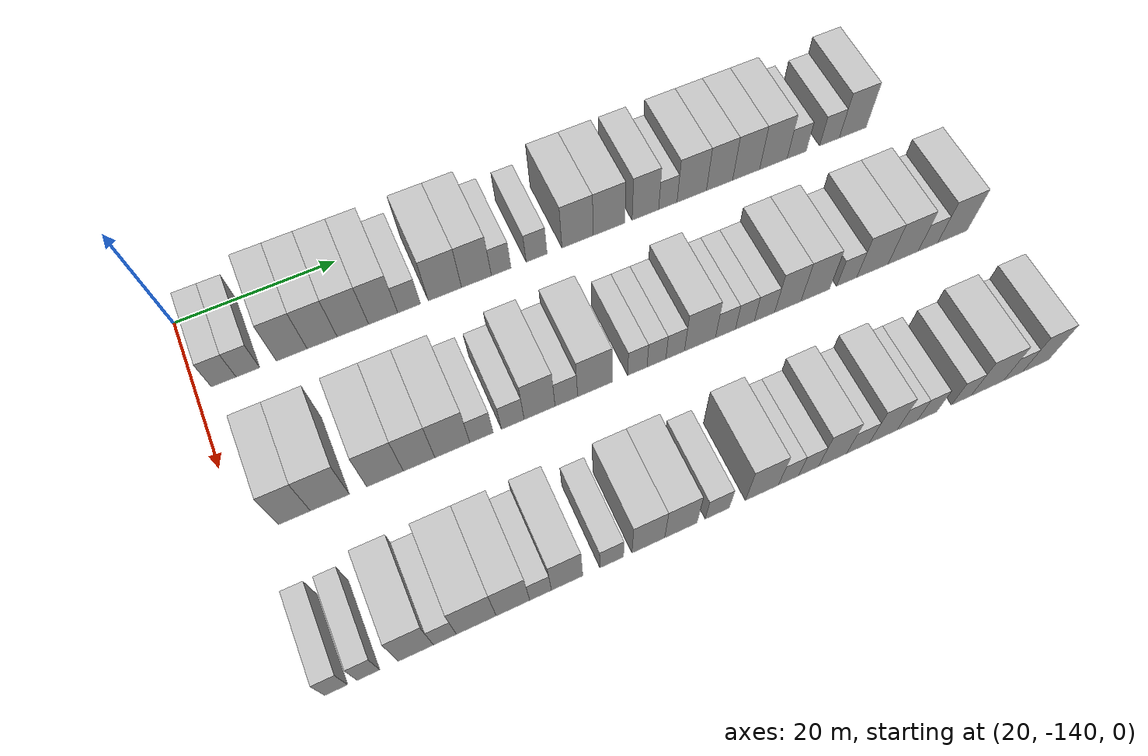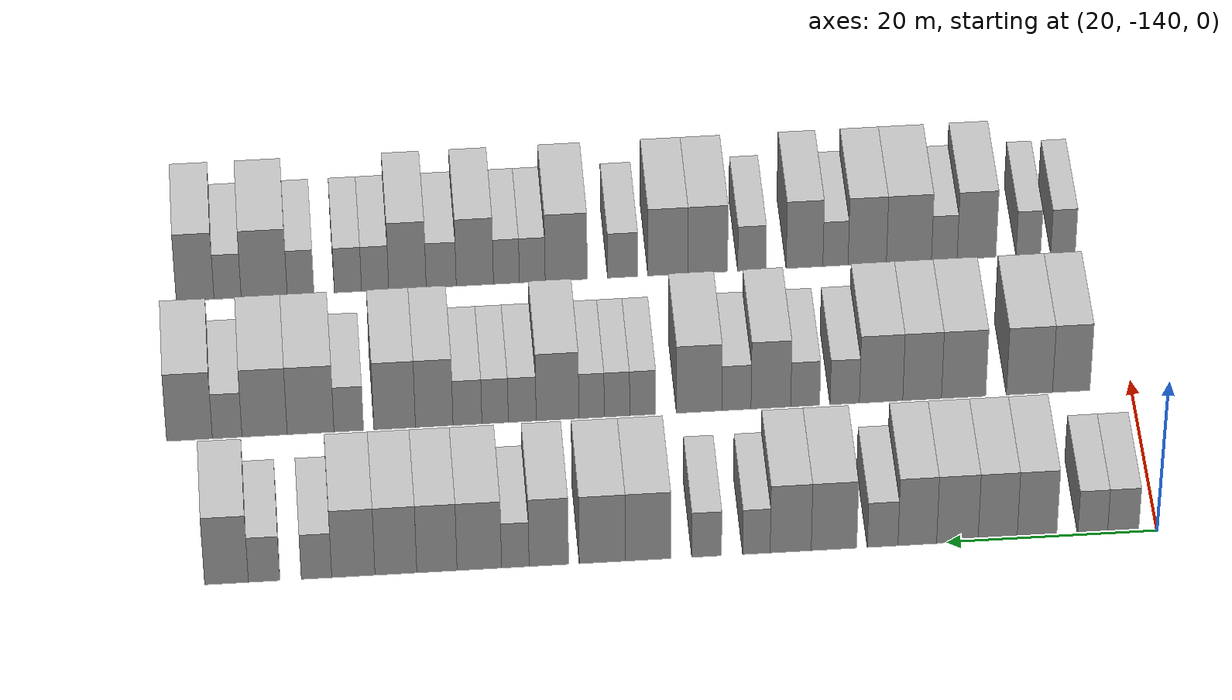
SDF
<sdf version="1.6">
 <world name="default">
  <model name="building_26">
   <static>1</static>
   <pose>25.0000 -136.6865 0 0.000000 0.000000 0.000000</pose>
   <link name="link">
    <pose>0 0 3.00 0 0 0</pose>
    <collision name="collision"><geometry><box><size>10.0000 2.9522 6.0000</size></box></geometry></collision>
    <visual name="visual">
     <cast_shadows>0</cast_shadows>
     <geometry><box><size>10.0000 2.9522 6.0000</size></box></geometry>
     <material>
      <script>
       <uri>model://HANNAS_wall/materials/scripts</uri>
       <uri>model://HANNAS_wall/materials/textures</uri>
       <name>vrc/HANNAS_wall</name>
      </script>
     </material>
    </visual>
   </link>
  </model>
  <model name="building_27">
   <static>1</static>
   <pose>25.0000 -133.7986 0 0.000000 0.000000 0.000000</pose>
   <link name="link">
    <pose>0 0 3.00 0 0 0</pose>
    <collision name="collision"><geometry><box><size>10.0000 2.8236 6.0000</size></box></geometry></collision>
    <visual name="visual">
     <cast_shadows>0</cast_shadows>
     <geometry><box><size>10.0000 2.8236 6.0000</size></box></geometry>
     <material>
      <script>
       <uri>model://HANNAS_wall/materials/scripts</uri>
       <uri>model://HANNAS_wall/materials/textures</uri>
       <name>vrc/HANNAS_wall</name>
      </script>
     </material>
    </visual>
   </link>
  </model>
  <model name="building_28">
   <static>1</static>
   <pose>25.0000 -128.5092 0 0.000000 0.000000 0.000000</pose>
   <link name="link">
    <pose>0 0 4.50 0 0 0</pose>
    <collision name="collision"><geometry><box><size>10.0000 3.7552 9.0000</size></box></geometry></collision>
    <visual name="visual">
     <cast_shadows>0</cast_shadows>
     <geometry><box><size>10.0000 3.7552 9.0000</size></box></geometry>
     <material>
      <script>
       <uri>model://HANNAS_wall/materials/scripts</uri>
       <uri>model://HANNAS_wall/materials/textures</uri>
       <name>vrc/HANNAS_wall</name>
      </script>
     </material>
    </visual>
   </link>
  </model>
  <model name="building_29">
   <static>1</static>
   <pose>25.0000 -124.7815 0 0.000000 0.000000 0.000000</pose>
   <link name="link">
    <pose>0 0 4.50 0 0 0</pose>
    <collision name="collision"><geometry><box><size>10.0000 3.7002 9.0000</size></box></geometry></collision>
    <visual name="visual">
     <cast_shadows>0</cast_shadows>
     <geometry><box><size>10.0000 3.7002 9.0000</size></box></geometry>
     <material>
      <script>
       <uri>model://HANNAS_wall/materials/scripts</uri>
       <uri>model://HANNAS_wall/materials/textures</uri>
       <name>vrc/HANNAS_wall</name>
      </script>
     </material>
    </visual>
   </link>
  </model>
  <model name="building_30">
   <static>1</static>
   <pose>25.0000 -120.9735 0 0.000000 0.000000 0.000000</pose>
   <link name="link">
    <pose>0 0 4.50 0 0 0</pose>
    <collision name="collision"><geometry><box><size>10.0000 3.9158 9.0000</size></box></geometry></collision>
    <visual name="visual">
     <cast_shadows>0</cast_shadows>
     <geometry><box><size>10.0000 3.9158 9.0000</size></box></geometry>
     <material>
      <script>
       <uri>model://HANNAS_wall/materials/scripts</uri>
       <uri>model://HANNAS_wall/materials/textures</uri>
       <name>vrc/HANNAS_wall</name>
      </script>
     </material>
    </visual>
   </link>
  </model>
  <model name="building_31">
   <static>1</static>
   <pose>25.0000 -117.1843 0 0.000000 0.000000 0.000000</pose>
   <link name="link">
    <pose>0 0 4.50 0 0 0</pose>
    <collision name="collision"><geometry><box><size>10.0000 3.6627 9.0000</size></box></geometry></collision>
    <visual name="visual">
     <cast_shadows>0</cast_shadows>
     <geometry><box><size>10.0000 3.6627 9.0000</size></box></geometry>
     <material>
      <script>
       <uri>model://HANNAS_wall/materials/scripts</uri>
       <uri>model://HANNAS_wall/materials/textures</uri>
       <name>vrc/HANNAS_wall</name>
      </script>
     </material>
    </visual>
   </link>
  </model>
  <model name="building_32">
   <static>1</static>
   <pose>25.0000 -113.9052 0 0.000000 0.000000 0.000000</pose>
   <link name="link">
    <pose>0 0 3.00 0 0 0</pose>
    <collision name="collision"><geometry><box><size>10.0000 2.8955 6.0000</size></box></geometry></collision>
    <visual name="visual">
     <cast_shadows>0</cast_shadows>
     <geometry><box><size>10.0000 2.8955 6.0000</size></box></geometry>
     <material>
      <script>
       <uri>model://HANNAS_wall/materials/scripts</uri>
       <uri>model://HANNAS_wall/materials/textures</uri>
       <name>vrc/HANNAS_wall</name>
      </script>
     </material>
    </visual>
   </link>
  </model>
  <model name="building_33">
   <static>1</static>
   <pose>25.0000 -109.3072 0 0.000000 0.000000 0.000000</pose>
   <link name="link">
    <pose>0 0 4.50 0 0 0</pose>
    <collision name="collision"><geometry><box><size>10.0000 4.3006 9.0000</size></box></geometry></collision>
    <visual name="visual">
     <cast_shadows>0</cast_shadows>
     <geometry><box><size>10.0000 4.3006 9.0000</size></box></geometry>
     <material>
      <script>
       <uri>model://HANNAS_wall/materials/scripts</uri>
       <uri>model://HANNAS_wall/materials/textures</uri>
       <name>vrc/HANNAS_wall</name>
      </script>
     </material>
    </visual>
   </link>
  </model>
  <model name="building_34">
   <static>1</static>
   <pose>25.0000 -105.2153 0 0.000000 0.000000 0.000000</pose>
   <link name="link">
    <pose>0 0 4.50 0 0 0</pose>
    <collision name="collision"><geometry><box><size>10.0000 3.8832 9.0000</size></box></geometry></collision>
    <visual name="visual">
     <cast_shadows>0</cast_shadows>
     <geometry><box><size>10.0000 3.8832 9.0000</size></box></geometry>
     <material>
      <script>
       <uri>model://HANNAS_wall/materials/scripts</uri>
       <uri>model://HANNAS_wall/materials/textures</uri>
       <name>vrc/HANNAS_wall</name>
      </script>
     </material>
    </visual>
   </link>
  </model>
  <model name="building_35">
   <static>1</static>
   <pose>25.0000 -101.9781 0 0.000000 0.000000 0.000000</pose>
   <link name="link">
    <pose>0 0 3.00 0 0 0</pose>
    <collision name="collision"><geometry><box><size>10.0000 2.5912 6.0000</size></box></geometry></collision>
    <visual name="visual">
     <cast_shadows>0</cast_shadows>
     <geometry><box><size>10.0000 2.5912 6.0000</size></box></geometry>
     <material>
      <script>
       <uri>model://HANNAS_wall/materials/scripts</uri>
       <uri>model://HANNAS_wall/materials/textures</uri>
       <name>vrc/HANNAS_wall</name>
      </script>
     </material>
    </visual>
   </link>
  </model>
  <model name="building_36">
   <static>1</static>
   <pose>25.0000 -97.2836 0 0.000000 0.000000 0.000000</pose>
   <link name="link">
    <pose>0 0 3.00 0 0 0</pose>
    <collision name="collision"><geometry><box><size>10.0000 2.7979 6.0000</size></box></geometry></collision>
    <visual name="visual">
     <cast_shadows>0</cast_shadows>
     <geometry><box><size>10.0000 2.7979 6.0000</size></box></geometry>
     <material>
      <script>
       <uri>model://HANNAS_wall/materials/scripts</uri>
       <uri>model://HANNAS_wall/materials/textures</uri>
       <name>vrc/HANNAS_wall</name>
      </script>
     </material>
    </visual>
   </link>
  </model>
  <model name="building_37">
   <static>1</static>
   <pose>25.0000 -91.7551 0 0.000000 0.000000 0.000000</pose>
   <link name="link">
    <pose>0 0 4.50 0 0 0</pose>
    <collision name="collision"><geometry><box><size>10.0000 4.2590 9.0000</size></box></geometry></collision>
    <visual name="visual">
     <cast_shadows>0</cast_shadows>
     <geometry><box><size>10.0000 4.2590 9.0000</size></box></geometry>
     <material>
      <script>
       <uri>model://HANNAS_wall/materials/scripts</uri>
       <uri>model://HANNAS_wall/materials/textures</uri>
       <name>vrc/HANNAS_wall</name>
      </script>
     </material>
    </visual>
   </link>
  </model>
  <model name="building_38">
   <static>1</static>
   <pose>25.0000 -87.4545 0 0.000000 0.000000 0.000000</pose>
   <link name="link">
    <pose>0 0 4.50 0 0 0</pose>
    <collision name="collision"><geometry><box><size>10.0000 4.3421 9.0000</size></box></geometry></collision>
    <visual name="visual">
     <cast_shadows>0</cast_shadows>
     <geometry><box><size>10.0000 4.3421 9.0000</size></box></geometry>
     <material>
      <script>
       <uri>model://HANNAS_wall/materials/scripts</uri>
       <uri>model://HANNAS_wall/materials/textures</uri>
       <name>vrc/HANNAS_wall</name>
      </script>
     </material>
    </visual>
   </link>
  </model>
  <model name="building_39">
   <static>1</static>
   <pose>25.0000 -82.4269 0 0.000000 0.000000 0.000000</pose>
   <link name="link">
    <pose>0 0 4.50 0 0 0</pose>
    <collision name="collision"><geometry><box><size>10.0000 3.7131 9.0000</size></box></geometry></collision>
    <visual name="visual">
     <cast_shadows>0</cast_shadows>
     <geometry><box><size>10.0000 3.7131 9.0000</size></box></geometry>
     <material>
      <script>
       <uri>model://HANNAS_wall/materials/scripts</uri>
       <uri>model://HANNAS_wall/materials/textures</uri>
       <name>vrc/HANNAS_wall</name>
      </script>
     </material>
    </visual>
   </link>
  </model>
  <model name="building_40">
   <static>1</static>
   <pose>25.0000 -79.2760 0 0.000000 0.000000 0.000000</pose>
   <link name="link">
    <pose>0 0 3.00 0 0 0</pose>
    <collision name="collision"><geometry><box><size>10.0000 2.5886 6.0000</size></box></geometry></collision>
    <visual name="visual">
     <cast_shadows>0</cast_shadows>
     <geometry><box><size>10.0000 2.5886 6.0000</size></box></geometry>
     <material>
      <script>
       <uri>model://HANNAS_wall/materials/scripts</uri>
       <uri>model://HANNAS_wall/materials/textures</uri>
       <name>vrc/HANNAS_wall</name>
      </script>
     </material>
    </visual>
   </link>
  </model>
  <model name="building_41">
   <static>1</static>
   <pose>25.0000 -75.8883 0 0.000000 0.000000 0.000000</pose>
   <link name="link">
    <pose>0 0 4.50 0 0 0</pose>
    <collision name="collision"><geometry><box><size>10.0000 4.1868 9.0000</size></box></geometry></collision>
    <visual name="visual">
     <cast_shadows>0</cast_shadows>
     <geometry><box><size>10.0000 4.1868 9.0000</size></box></geometry>
     <material>
      <script>
       <uri>model://HANNAS_wall/materials/scripts</uri>
       <uri>model://HANNAS_wall/materials/textures</uri>
       <name>vrc/HANNAS_wall</name>
      </script>
     </material>
    </visual>
   </link>
  </model>
  <model name="building_42">
   <static>1</static>
   <pose>25.0000 -71.9064 0 0.000000 0.000000 0.000000</pose>
   <link name="link">
    <pose>0 0 4.50 0 0 0</pose>
    <collision name="collision"><geometry><box><size>10.0000 3.7771 9.0000</size></box></geometry></collision>
    <visual name="visual">
     <cast_shadows>0</cast_shadows>
     <geometry><box><size>10.0000 3.7771 9.0000</size></box></geometry>
     <material>
      <script>
       <uri>model://HANNAS_wall/materials/scripts</uri>
       <uri>model://HANNAS_wall/materials/textures</uri>
       <name>vrc/HANNAS_wall</name>
      </script>
     </material>
    </visual>
   </link>
  </model>
  <model name="building_43">
   <static>1</static>
   <pose>25.0000 -68.0568 0 0.000000 0.000000 0.000000</pose>
   <link name="link">
    <pose>0 0 4.50 0 0 0</pose>
    <collision name="collision"><geometry><box><size>10.0000 3.9220 9.0000</size></box></geometry></collision>
    <visual name="visual">
     <cast_shadows>0</cast_shadows>
     <geometry><box><size>10.0000 3.9220 9.0000</size></box></geometry>
     <material>
      <script>
       <uri>model://HANNAS_wall/materials/scripts</uri>
       <uri>model://HANNAS_wall/materials/textures</uri>
       <name>vrc/HANNAS_wall</name>
      </script>
     </material>
    </visual>
   </link>
  </model>
  <model name="building_44">
   <static>1</static>
   <pose>25.0000 -64.0675 0 0.000000 0.000000 0.000000</pose>
   <link name="link">
    <pose>0 0 4.50 0 0 0</pose>
    <collision name="collision"><geometry><box><size>10.0000 4.0567 9.0000</size></box></geometry></collision>
    <visual name="visual">
     <cast_shadows>0</cast_shadows>
     <geometry><box><size>10.0000 4.0567 9.0000</size></box></geometry>
     <material>
      <script>
       <uri>model://HANNAS_wall/materials/scripts</uri>
       <uri>model://HANNAS_wall/materials/textures</uri>
       <name>vrc/HANNAS_wall</name>
      </script>
     </material>
    </visual>
   </link>
  </model>
  <model name="building_45">
   <static>1</static>
   <pose>25.0000 -60.6158 0 0.000000 0.000000 0.000000</pose>
   <link name="link">
    <pose>0 0 3.00 0 0 0</pose>
    <collision name="collision"><geometry><box><size>10.0000 2.8466 6.0000</size></box></geometry></collision>
    <visual name="visual">
     <cast_shadows>0</cast_shadows>
     <geometry><box><size>10.0000 2.8466 6.0000</size></box></geometry>
     <material>
      <script>
       <uri>model://HANNAS_wall/materials/scripts</uri>
       <uri>model://HANNAS_wall/materials/textures</uri>
       <name>vrc/HANNAS_wall</name>
      </script>
     </material>
    </visual>
   </link>
  </model>
  <model name="building_46">
   <static>1</static>
   <pose>25.0000 -55.7144 0 0.000000 0.000000 0.000000</pose>
   <link name="link">
    <pose>0 0 3.00 0 0 0</pose>
    <collision name="collision"><geometry><box><size>10.0000 2.9563 6.0000</size></box></geometry></collision>
    <visual name="visual">
     <cast_shadows>0</cast_shadows>
     <geometry><box><size>10.0000 2.9563 6.0000</size></box></geometry>
     <material>
      <script>
       <uri>model://HANNAS_wall/materials/scripts</uri>
       <uri>model://HANNAS_wall/materials/textures</uri>
       <name>vrc/HANNAS_wall</name>
      </script>
     </material>
    </visual>
   </link>
  </model>
  <model name="building_47">
   <static>1</static>
   <pose>25.0000 -52.1917 0 0.000000 0.000000 0.000000</pose>
   <link name="link">
    <pose>0 0 4.50 0 0 0</pose>
    <collision name="collision"><geometry><box><size>10.0000 4.0892 9.0000</size></box></geometry></collision>
    <visual name="visual">
     <cast_shadows>0</cast_shadows>
     <geometry><box><size>10.0000 4.0892 9.0000</size></box></geometry>
     <material>
      <script>
       <uri>model://HANNAS_wall/materials/scripts</uri>
       <uri>model://HANNAS_wall/materials/textures</uri>
       <name>vrc/HANNAS_wall</name>
      </script>
     </material>
    </visual>
   </link>
  </model>
  <model name="building_137">
   <static>1</static>
   <pose>44.0000 -134.0973 0 0.000000 0.000000 0.000000</pose>
   <link name="link">
    <pose>0 0 4.50 0 0 0</pose>
    <collision name="collision"><geometry><box><size>10.0000 3.6330 9.0000</size></box></geometry></collision>
    <visual name="visual">
     <cast_shadows>0</cast_shadows>
     <geometry><box><size>10.0000 3.6330 9.0000</size></box></geometry>
     <material>
      <script>
       <uri>model://HANNAS_wall/materials/scripts</uri>
       <uri>model://HANNAS_wall/materials/textures</uri>
       <name>vrc/HANNAS_wall</name>
      </script>
     </material>
    </visual>
   </link>
  </model>
  <model name="building_138">
   <static>1</static>
   <pose>44.0000 -130.0490 0 0.000000 0.000000 0.000000</pose>
   <link name="link">
    <pose>0 0 4.50 0 0 0</pose>
    <collision name="collision"><geometry><box><size>10.0000 4.4636 9.0000</size></box></geometry></collision>
    <visual name="visual">
     <cast_shadows>0</cast_shadows>
     <geometry><box><size>10.0000 4.4636 9.0000</size></box></geometry>
     <material>
      <script>
       <uri>model://HANNAS_wall/materials/scripts</uri>
       <uri>model://HANNAS_wall/materials/textures</uri>
       <name>vrc/HANNAS_wall</name>
      </script>
     </material>
    </visual>
   </link>
  </model>
  <model name="building_139">
   <static>1</static>
   <pose>44.0000 -123.6754 0 0.000000 0.000000 0.000000</pose>
   <link name="link">
    <pose>0 0 4.50 0 0 0</pose>
    <collision name="collision"><geometry><box><size>10.0000 4.2837 9.0000</size></box></geometry></collision>
    <visual name="visual">
     <cast_shadows>0</cast_shadows>
     <geometry><box><size>10.0000 4.2837 9.0000</size></box></geometry>
     <material>
      <script>
       <uri>model://HANNAS_wall/materials/scripts</uri>
       <uri>model://HANNAS_wall/materials/textures</uri>
       <name>vrc/HANNAS_wall</name>
      </script>
     </material>
    </visual>
   </link>
  </model>
  <model name="building_140">
   <static>1</static>
   <pose>44.0000 -119.6615 0 0.000000 0.000000 0.000000</pose>
   <link name="link">
    <pose>0 0 4.50 0 0 0</pose>
    <collision name="collision"><geometry><box><size>10.0000 3.7443 9.0000</size></box></geometry></collision>
    <visual name="visual">
     <cast_shadows>0</cast_shadows>
     <geometry><box><size>10.0000 3.7443 9.0000</size></box></geometry>
     <material>
      <script>
       <uri>model://HANNAS_wall/materials/scripts</uri>
       <uri>model://HANNAS_wall/materials/textures</uri>
       <name>vrc/HANNAS_wall</name>
      </script>
     </material>
    </visual>
   </link>
  </model>
  <model name="building_141">
   <static>1</static>
   <pose>44.0000 -115.6924 0 0.000000 0.000000 0.000000</pose>
   <link name="link">
    <pose>0 0 4.50 0 0 0</pose>
    <collision name="collision"><geometry><box><size>10.0000 4.1938 9.0000</size></box></geometry></collision>
    <visual name="visual">
     <cast_shadows>0</cast_shadows>
     <geometry><box><size>10.0000 4.1938 9.0000</size></box></geometry>
     <material>
      <script>
       <uri>model://HANNAS_wall/materials/scripts</uri>
       <uri>model://HANNAS_wall/materials/textures</uri>
       <name>vrc/HANNAS_wall</name>
      </script>
     </material>
    </visual>
   </link>
  </model>
  <model name="building_142">
   <static>1</static>
   <pose>44.0000 -112.1790 0 0.000000 0.000000 0.000000</pose>
   <link name="link">
    <pose>0 0 3.00 0 0 0</pose>
    <collision name="collision"><geometry><box><size>10.0000 2.8330 6.0000</size></box></geometry></collision>
    <visual name="visual">
     <cast_shadows>0</cast_shadows>
     <geometry><box><size>10.0000 2.8330 6.0000</size></box></geometry>
     <material>
      <script>
       <uri>model://HANNAS_wall/materials/scripts</uri>
       <uri>model://HANNAS_wall/materials/textures</uri>
       <name>vrc/HANNAS_wall</name>
      </script>
     </material>
    </visual>
   </link>
  </model>
  <model name="building_143">
   <static>1</static>
   <pose>44.0000 -108.3633 0 0.000000 0.000000 0.000000</pose>
   <link name="link">
    <pose>0 0 3.00 0 0 0</pose>
    <collision name="collision"><geometry><box><size>10.0000 2.7986 6.0000</size></box></geometry></collision>
    <visual name="visual">
     <cast_shadows>0</cast_shadows>
     <geometry><box><size>10.0000 2.7986 6.0000</size></box></geometry>
     <material>
      <script>
       <uri>model://HANNAS_wall/materials/scripts</uri>
       <uri>model://HANNAS_wall/materials/textures</uri>
       <name>vrc/HANNAS_wall</name>
      </script>
     </material>
    </visual>
   </link>
  </model>
  <model name="building_144">
   <static>1</static>
   <pose>44.0000 -105.0489 0 0.000000 0.000000 0.000000</pose>
   <link name="link">
    <pose>0 0 4.50 0 0 0</pose>
    <collision name="collision"><geometry><box><size>10.0000 3.8302 9.0000</size></box></geometry></collision>
    <visual name="visual">
     <cast_shadows>0</cast_shadows>
     <geometry><box><size>10.0000 3.8302 9.0000</size></box></geometry>
     <material>
      <script>
       <uri>model://HANNAS_wall/materials/scripts</uri>
       <uri>model://HANNAS_wall/materials/textures</uri>
       <name>vrc/HANNAS_wall</name>
      </script>
     </material>
    </visual>
   </link>
  </model>
  <model name="building_145">
   <static>1</static>
   <pose>44.0000 -101.7205 0 0.000000 0.000000 0.000000</pose>
   <link name="link">
    <pose>0 0 3.00 0 0 0</pose>
    <collision name="collision"><geometry><box><size>10.0000 2.8266 6.0000</size></box></geometry></collision>
    <visual name="visual">
     <cast_shadows>0</cast_shadows>
     <geometry><box><size>10.0000 2.8266 6.0000</size></box></geometry>
     <material>
      <script>
       <uri>model://HANNAS_wall/materials/scripts</uri>
       <uri>model://HANNAS_wall/materials/textures</uri>
       <name>vrc/HANNAS_wall</name>
      </script>
     </material>
    </visual>
   </link>
  </model>
  <model name="building_146">
   <static>1</static>
   <pose>44.0000 -98.1257 0 0.000000 0.000000 0.000000</pose>
   <link name="link">
    <pose>0 0 4.50 0 0 0</pose>
    <collision name="collision"><geometry><box><size>10.0000 4.3629 9.0000</size></box></geometry></collision>
    <visual name="visual">
     <cast_shadows>0</cast_shadows>
     <geometry><box><size>10.0000 4.3629 9.0000</size></box></geometry>
     <material>
      <script>
       <uri>model://HANNAS_wall/materials/scripts</uri>
       <uri>model://HANNAS_wall/materials/textures</uri>
       <name>vrc/HANNAS_wall</name>
      </script>
     </material>
    </visual>
   </link>
  </model>
  <model name="building_147">
   <static>1</static>
   <pose>44.0000 -92.6922 0 0.000000 0.000000 0.000000</pose>
   <link name="link">
    <pose>0 0 3.00 0 0 0</pose>
    <collision name="collision"><geometry><box><size>10.0000 2.5041 6.0000</size></box></geometry></collision>
    <visual name="visual">
     <cast_shadows>0</cast_shadows>
     <geometry><box><size>10.0000 2.5041 6.0000</size></box></geometry>
     <material>
      <script>
       <uri>model://HANNAS_wall/materials/scripts</uri>
       <uri>model://HANNAS_wall/materials/textures</uri>
       <name>vrc/HANNAS_wall</name>
      </script>
     </material>
    </visual>
   </link>
  </model>
  <model name="building_148">
   <static>1</static>
   <pose>44.0000 -90.2165 0 0.000000 0.000000 0.000000</pose>
   <link name="link">
    <pose>0 0 3.00 0 0 0</pose>
    <collision name="collision"><geometry><box><size>10.0000 2.4473 6.0000</size></box></geometry></collision>
    <visual name="visual">
     <cast_shadows>0</cast_shadows>
     <geometry><box><size>10.0000 2.4473 6.0000</size></box></geometry>
     <material>
      <script>
       <uri>model://HANNAS_wall/materials/scripts</uri>
       <uri>model://HANNAS_wall/materials/textures</uri>
       <name>vrc/HANNAS_wall</name>
      </script>
     </material>
    </visual>
   </link>
  </model>
  <model name="building_149">
   <static>1</static>
   <pose>44.0000 -87.7752 0 0.000000 0.000000 0.000000</pose>
   <link name="link">
    <pose>0 0 3.00 0 0 0</pose>
    <collision name="collision"><geometry><box><size>10.0000 2.4353 6.0000</size></box></geometry></collision>
    <visual name="visual">
     <cast_shadows>0</cast_shadows>
     <geometry><box><size>10.0000 2.4353 6.0000</size></box></geometry>
     <material>
      <script>
       <uri>model://HANNAS_wall/materials/scripts</uri>
       <uri>model://HANNAS_wall/materials/textures</uri>
       <name>vrc/HANNAS_wall</name>
      </script>
     </material>
    </visual>
   </link>
  </model>
  <model name="building_150">
   <static>1</static>
   <pose>44.0000 -84.5060 0 0.000000 0.000000 0.000000</pose>
   <link name="link">
    <pose>0 0 4.50 0 0 0</pose>
    <collision name="collision"><geometry><box><size>10.0000 4.1030 9.0000</size></box></geometry></collision>
    <visual name="visual">
     <cast_shadows>0</cast_shadows>
     <geometry><box><size>10.0000 4.1030 9.0000</size></box></geometry>
     <material>
      <script>
       <uri>model://HANNAS_wall/materials/scripts</uri>
       <uri>model://HANNAS_wall/materials/textures</uri>
       <name>vrc/HANNAS_wall</name>
      </script>
     </material>
    </visual>
   </link>
  </model>
  <model name="building_151">
   <static>1</static>
   <pose>44.0000 -81.1159 0 0.000000 0.000000 0.000000</pose>
   <link name="link">
    <pose>0 0 3.00 0 0 0</pose>
    <collision name="collision"><geometry><box><size>10.0000 2.6771 6.0000</size></box></geometry></collision>
    <visual name="visual">
     <cast_shadows>0</cast_shadows>
     <geometry><box><size>10.0000 2.6771 6.0000</size></box></geometry>
     <material>
      <script>
       <uri>model://HANNAS_wall/materials/scripts</uri>
       <uri>model://HANNAS_wall/materials/textures</uri>
       <name>vrc/HANNAS_wall</name>
      </script>
     </material>
    </visual>
   </link>
  </model>
  <model name="building_152">
   <static>1</static>
   <pose>44.0000 -78.5086 0 0.000000 0.000000 0.000000</pose>
   <link name="link">
    <pose>0 0 3.00 0 0 0</pose>
    <collision name="collision"><geometry><box><size>10.0000 2.5376 6.0000</size></box></geometry></collision>
    <visual name="visual">
     <cast_shadows>0</cast_shadows>
     <geometry><box><size>10.0000 2.5376 6.0000</size></box></geometry>
     <material>
      <script>
       <uri>model://HANNAS_wall/materials/scripts</uri>
       <uri>model://HANNAS_wall/materials/textures</uri>
       <name>vrc/HANNAS_wall</name>
      </script>
     </material>
    </visual>
   </link>
  </model>
  <model name="building_153">
   <static>1</static>
   <pose>44.0000 -75.8538 0 0.000000 0.000000 0.000000</pose>
   <link name="link">
    <pose>0 0 3.00 0 0 0</pose>
    <collision name="collision"><geometry><box><size>10.0000 2.7719 6.0000</size></box></geometry></collision>
    <visual name="visual">
     <cast_shadows>0</cast_shadows>
     <geometry><box><size>10.0000 2.7719 6.0000</size></box></geometry>
     <material>
      <script>
       <uri>model://HANNAS_wall/materials/scripts</uri>
       <uri>model://HANNAS_wall/materials/textures</uri>
       <name>vrc/HANNAS_wall</name>
      </script>
     </material>
    </visual>
   </link>
  </model>
  <model name="building_154">
   <static>1</static>
   <pose>44.0000 -72.6641 0 0.000000 0.000000 0.000000</pose>
   <link name="link">
    <pose>0 0 4.50 0 0 0</pose>
    <collision name="collision"><geometry><box><size>10.0000 3.6076 9.0000</size></box></geometry></collision>
    <visual name="visual">
     <cast_shadows>0</cast_shadows>
     <geometry><box><size>10.0000 3.6076 9.0000</size></box></geometry>
     <material>
      <script>
       <uri>model://HANNAS_wall/materials/scripts</uri>
       <uri>model://HANNAS_wall/materials/textures</uri>
       <name>vrc/HANNAS_wall</name>
      </script>
     </material>
    </visual>
   </link>
  </model>
  <model name="building_155">
   <static>1</static>
   <pose>44.0000 -68.8709 0 0.000000 0.000000 0.000000</pose>
   <link name="link">
    <pose>0 0 4.50 0 0 0</pose>
    <collision name="collision"><geometry><box><size>10.0000 3.9789 9.0000</size></box></geometry></collision>
    <visual name="visual">
     <cast_shadows>0</cast_shadows>
     <geometry><box><size>10.0000 3.9789 9.0000</size></box></geometry>
     <material>
      <script>
       <uri>model://HANNAS_wall/materials/scripts</uri>
       <uri>model://HANNAS_wall/materials/textures</uri>
       <name>vrc/HANNAS_wall</name>
      </script>
     </material>
    </visual>
   </link>
  </model>
  <model name="building_156">
   <static>1</static>
   <pose>44.0000 -64.4676 0 0.000000 0.000000 0.000000</pose>
   <link name="link">
    <pose>0 0 3.00 0 0 0</pose>
    <collision name="collision"><geometry><box><size>10.0000 2.8277 6.0000</size></box></geometry></collision>
    <visual name="visual">
     <cast_shadows>0</cast_shadows>
     <geometry><box><size>10.0000 2.8277 6.0000</size></box></geometry>
     <material>
      <script>
       <uri>model://HANNAS_wall/materials/scripts</uri>
       <uri>model://HANNAS_wall/materials/textures</uri>
       <name>vrc/HANNAS_wall</name>
      </script>
     </material>
    </visual>
   </link>
  </model>
  <model name="building_157">
   <static>1</static>
   <pose>44.0000 -60.8131 0 0.000000 0.000000 0.000000</pose>
   <link name="link">
    <pose>0 0 4.50 0 0 0</pose>
    <collision name="collision"><geometry><box><size>10.0000 4.4812 9.0000</size></box></geometry></collision>
    <visual name="visual">
     <cast_shadows>0</cast_shadows>
     <geometry><box><size>10.0000 4.4812 9.0000</size></box></geometry>
     <material>
      <script>
       <uri>model://HANNAS_wall/materials/scripts</uri>
       <uri>model://HANNAS_wall/materials/textures</uri>
       <name>vrc/HANNAS_wall</name>
      </script>
     </material>
    </visual>
   </link>
  </model>
  <model name="building_158">
   <static>1</static>
   <pose>44.0000 -56.4097 0 0.000000 0.000000 0.000000</pose>
   <link name="link">
    <pose>0 0 4.50 0 0 0</pose>
    <collision name="collision"><geometry><box><size>10.0000 4.3256 9.0000</size></box></geometry></collision>
    <visual name="visual">
     <cast_shadows>0</cast_shadows>
     <geometry><box><size>10.0000 4.3256 9.0000</size></box></geometry>
     <material>
      <script>
       <uri>model://HANNAS_wall/materials/scripts</uri>
       <uri>model://HANNAS_wall/materials/textures</uri>
       <name>vrc/HANNAS_wall</name>
      </script>
     </material>
    </visual>
   </link>
  </model>
  <model name="building_159">
   <static>1</static>
   <pose>44.0000 -52.8302 0 0.000000 0.000000 0.000000</pose>
   <link name="link">
    <pose>0 0 3.00 0 0 0</pose>
    <collision name="collision"><geometry><box><size>10.0000 2.8333 6.0000</size></box></geometry></collision>
    <visual name="visual">
     <cast_shadows>0</cast_shadows>
     <geometry><box><size>10.0000 2.8333 6.0000</size></box></geometry>
     <material>
      <script>
       <uri>model://HANNAS_wall/materials/scripts</uri>
       <uri>model://HANNAS_wall/materials/textures</uri>
       <name>vrc/HANNAS_wall</name>
      </script>
     </material>
    </visual>
   </link>
  </model>
  <model name="building_160">
   <static>1</static>
   <pose>44.0000 -49.2328 0 0.000000 0.000000 0.000000</pose>
   <link name="link">
    <pose>0 0 4.50 0 0 0</pose>
    <collision name="collision"><geometry><box><size>10.0000 4.3617 9.0000</size></box></geometry></collision>
    <visual name="visual">
     <cast_shadows>0</cast_shadows>
     <geometry><box><size>10.0000 4.3617 9.0000</size></box></geometry>
     <material>
      <script>
       <uri>model://HANNAS_wall/materials/scripts</uri>
       <uri>model://HANNAS_wall/materials/textures</uri>
       <name>vrc/HANNAS_wall</name>
      </script>
     </material>
    </visual>
   </link>
  </model>
  <model name="building_258">
   <static>1</static>
   <pose>63.0000 -135.6178 0 0.000000 0.000000 0.000000</pose>
   <link name="link">
    <pose>0 0 3.00 0 0 0</pose>
    <collision name="collision"><geometry><box><size>10.0000 2.4374 6.0000</size></box></geometry></collision>
    <visual name="visual">
     <cast_shadows>0</cast_shadows>
     <geometry><box><size>10.0000 2.4374 6.0000</size></box></geometry>
     <material>
      <script>
       <uri>model://HANNAS_wall/materials/scripts</uri>
       <uri>model://HANNAS_wall/materials/textures</uri>
       <name>vrc/HANNAS_wall</name>
      </script>
     </material>
    </visual>
   </link>
  </model>
  <model name="building_259">
   <static>1</static>
   <pose>63.0000 -132.1848 0 0.000000 0.000000 0.000000</pose>
   <link name="link">
    <pose>0 0 3.00 0 0 0</pose>
    <collision name="collision"><geometry><box><size>10.0000 2.4287 6.0000</size></box></geometry></collision>
    <visual name="visual">
     <cast_shadows>0</cast_shadows>
     <geometry><box><size>10.0000 2.4287 6.0000</size></box></geometry>
     <material>
      <script>
       <uri>model://HANNAS_wall/materials/scripts</uri>
       <uri>model://HANNAS_wall/materials/textures</uri>
       <name>vrc/HANNAS_wall</name>
      </script>
     </material>
    </visual>
   </link>
  </model>
  <model name="building_260">
   <static>1</static>
   <pose>63.0000 -127.0533 0 0.000000 0.000000 0.000000</pose>
   <link name="link">
    <pose>0 0 4.50 0 0 0</pose>
    <collision name="collision"><geometry><box><size>10.0000 3.8343 9.0000</size></box></geometry></collision>
    <visual name="visual">
     <cast_shadows>0</cast_shadows>
     <geometry><box><size>10.0000 3.8343 9.0000</size></box></geometry>
     <material>
      <script>
       <uri>model://HANNAS_wall/materials/scripts</uri>
       <uri>model://HANNAS_wall/materials/textures</uri>
       <name>vrc/HANNAS_wall</name>
      </script>
     </material>
    </visual>
   </link>
  </model>
  <model name="building_261">
   <static>1</static>
   <pose>63.0000 -123.8676 0 0.000000 0.000000 0.000000</pose>
   <link name="link">
    <pose>0 0 3.00 0 0 0</pose>
    <collision name="collision"><geometry><box><size>10.0000 2.5370 6.0000</size></box></geometry></collision>
    <visual name="visual">
     <cast_shadows>0</cast_shadows>
     <geometry><box><size>10.0000 2.5370 6.0000</size></box></geometry>
     <material>
      <script>
       <uri>model://HANNAS_wall/materials/scripts</uri>
       <uri>model://HANNAS_wall/materials/textures</uri>
       <name>vrc/HANNAS_wall</name>
      </script>
     </material>
    </visual>
   </link>
  </model>
  <model name="building_262">
   <static>1</static>
   <pose>63.0000 -120.3769 0 0.000000 0.000000 0.000000</pose>
   <link name="link">
    <pose>0 0 4.50 0 0 0</pose>
    <collision name="collision"><geometry><box><size>10.0000 4.4443 9.0000</size></box></geometry></collision>
    <visual name="visual">
     <cast_shadows>0</cast_shadows>
     <geometry><box><size>10.0000 4.4443 9.0000</size></box></geometry>
     <material>
      <script>
       <uri>model://HANNAS_wall/materials/scripts</uri>
       <uri>model://HANNAS_wall/materials/textures</uri>
       <name>vrc/HANNAS_wall</name>
      </script>
     </material>
    </visual>
   </link>
  </model>
  <model name="building_263">
   <static>1</static>
   <pose>63.0000 -116.2612 0 0.000000 0.000000 0.000000</pose>
   <link name="link">
    <pose>0 0 4.50 0 0 0</pose>
    <collision name="collision"><geometry><box><size>10.0000 3.7872 9.0000</size></box></geometry></collision>
    <visual name="visual">
     <cast_shadows>0</cast_shadows>
     <geometry><box><size>10.0000 3.7872 9.0000</size></box></geometry>
     <material>
      <script>
       <uri>model://HANNAS_wall/materials/scripts</uri>
       <uri>model://HANNAS_wall/materials/textures</uri>
       <name>vrc/HANNAS_wall</name>
      </script>
     </material>
    </visual>
   </link>
  </model>
  <model name="building_264">
   <static>1</static>
   <pose>63.0000 -113.1240 0 0.000000 0.000000 0.000000</pose>
   <link name="link">
    <pose>0 0 3.00 0 0 0</pose>
    <collision name="collision"><geometry><box><size>10.0000 2.4872 6.0000</size></box></geometry></collision>
    <visual name="visual">
     <cast_shadows>0</cast_shadows>
     <geometry><box><size>10.0000 2.4872 6.0000</size></box></geometry>
     <material>
      <script>
       <uri>model://HANNAS_wall/materials/scripts</uri>
       <uri>model://HANNAS_wall/materials/textures</uri>
       <name>vrc/HANNAS_wall</name>
      </script>
     </material>
    </visual>
   </link>
  </model>
  <model name="building_265">
   <static>1</static>
   <pose>63.0000 -110.0704 0 0.000000 0.000000 0.000000</pose>
   <link name="link">
    <pose>0 0 4.50 0 0 0</pose>
    <collision name="collision"><geometry><box><size>10.0000 3.6200 9.0000</size></box></geometry></collision>
    <visual name="visual">
     <cast_shadows>0</cast_shadows>
     <geometry><box><size>10.0000 3.6200 9.0000</size></box></geometry>
     <material>
      <script>
       <uri>model://HANNAS_wall/materials/scripts</uri>
       <uri>model://HANNAS_wall/materials/textures</uri>
       <name>vrc/HANNAS_wall</name>
      </script>
     </material>
    </visual>
   </link>
  </model>
  <model name="building_266">
   <static>1</static>
   <pose>63.0000 -104.8734 0 0.000000 0.000000 0.000000</pose>
   <link name="link">
    <pose>0 0 3.00 0 0 0</pose>
    <collision name="collision"><geometry><box><size>10.0000 2.7741 6.0000</size></box></geometry></collision>
    <visual name="visual">
     <cast_shadows>0</cast_shadows>
     <geometry><box><size>10.0000 2.7741 6.0000</size></box></geometry>
     <material>
      <script>
       <uri>model://HANNAS_wall/materials/scripts</uri>
       <uri>model://HANNAS_wall/materials/textures</uri>
       <name>vrc/HANNAS_wall</name>
      </script>
     </material>
    </visual>
   </link>
  </model>
  <model name="building_267">
   <static>1</static>
   <pose>63.0000 -100.5314 0 0.000000 0.000000 0.000000</pose>
   <link name="link">
    <pose>0 0 4.50 0 0 0</pose>
    <collision name="collision"><geometry><box><size>10.0000 3.9099 9.0000</size></box></geometry></collision>
    <visual name="visual">
     <cast_shadows>0</cast_shadows>
     <geometry><box><size>10.0000 3.9099 9.0000</size></box></geometry>
     <material>
      <script>
       <uri>model://HANNAS_wall/materials/scripts</uri>
       <uri>model://HANNAS_wall/materials/textures</uri>
       <name>vrc/HANNAS_wall</name>
      </script>
     </material>
    </visual>
   </link>
  </model>
  <model name="building_268">
   <static>1</static>
   <pose>63.0000 -96.6148 0 0.000000 0.000000 0.000000</pose>
   <link name="link">
    <pose>0 0 4.50 0 0 0</pose>
    <collision name="collision"><geometry><box><size>10.0000 3.9234 9.0000</size></box></geometry></collision>
    <visual name="visual">
     <cast_shadows>0</cast_shadows>
     <geometry><box><size>10.0000 3.9234 9.0000</size></box></geometry>
     <material>
      <script>
       <uri>model://HANNAS_wall/materials/scripts</uri>
       <uri>model://HANNAS_wall/materials/textures</uri>
       <name>vrc/HANNAS_wall</name>
      </script>
     </material>
    </visual>
   </link>
  </model>
  <model name="building_269">
   <static>1</static>
   <pose>63.0000 -92.1715 0 0.000000 0.000000 0.000000</pose>
   <link name="link">
    <pose>0 0 3.00 0 0 0</pose>
    <collision name="collision"><geometry><box><size>10.0000 2.9632 6.0000</size></box></geometry></collision>
    <visual name="visual">
     <cast_shadows>0</cast_shadows>
     <geometry><box><size>10.0000 2.9632 6.0000</size></box></geometry>
     <material>
      <script>
       <uri>model://HANNAS_wall/materials/scripts</uri>
       <uri>model://HANNAS_wall/materials/textures</uri>
       <name>vrc/HANNAS_wall</name>
      </script>
     </material>
    </visual>
   </link>
  </model>
  <model name="building_270">
   <static>1</static>
   <pose>63.0000 -86.6228 0 0.000000 0.000000 0.000000</pose>
   <link name="link">
    <pose>0 0 4.50 0 0 0</pose>
    <collision name="collision"><geometry><box><size>10.0000 4.1341 9.0000</size></box></geometry></collision>
    <visual name="visual">
     <cast_shadows>0</cast_shadows>
     <geometry><box><size>10.0000 4.1341 9.0000</size></box></geometry>
     <material>
      <script>
       <uri>model://HANNAS_wall/materials/scripts</uri>
       <uri>model://HANNAS_wall/materials/textures</uri>
       <name>vrc/HANNAS_wall</name>
      </script>
     </material>
    </visual>
   </link>
  </model>
  <model name="building_271">
   <static>1</static>
   <pose>63.0000 -83.2885 0 0.000000 0.000000 0.000000</pose>
   <link name="link">
    <pose>0 0 3.00 0 0 0</pose>
    <collision name="collision"><geometry><box><size>10.0000 2.5345 6.0000</size></box></geometry></collision>
    <visual name="visual">
     <cast_shadows>0</cast_shadows>
     <geometry><box><size>10.0000 2.5345 6.0000</size></box></geometry>
     <material>
      <script>
       <uri>model://HANNAS_wall/materials/scripts</uri>
       <uri>model://HANNAS_wall/materials/textures</uri>
       <name>vrc/HANNAS_wall</name>
      </script>
     </material>
    </visual>
   </link>
  </model>
  <model name="building_272">
   <static>1</static>
   <pose>63.0000 -80.7514 0 0.000000 0.000000 0.000000</pose>
   <link name="link">
    <pose>0 0 3.00 0 0 0</pose>
    <collision name="collision"><geometry><box><size>10.0000 2.5399 6.0000</size></box></geometry></collision>
    <visual name="visual">
     <cast_shadows>0</cast_shadows>
     <geometry><box><size>10.0000 2.5399 6.0000</size></box></geometry>
     <material>
      <script>
       <uri>model://HANNAS_wall/materials/scripts</uri>
       <uri>model://HANNAS_wall/materials/textures</uri>
       <name>vrc/HANNAS_wall</name>
      </script>
     </material>
    </visual>
   </link>
  </model>
  <model name="building_273">
   <static>1</static>
   <pose>63.0000 -77.6545 0 0.000000 0.000000 0.000000</pose>
   <link name="link">
    <pose>0 0 4.50 0 0 0</pose>
    <collision name="collision"><geometry><box><size>10.0000 3.6539 9.0000</size></box></geometry></collision>
    <visual name="visual">
     <cast_shadows>0</cast_shadows>
     <geometry><box><size>10.0000 3.6539 9.0000</size></box></geometry>
     <material>
      <script>
       <uri>model://HANNAS_wall/materials/scripts</uri>
       <uri>model://HANNAS_wall/materials/textures</uri>
       <name>vrc/HANNAS_wall</name>
      </script>
     </material>
    </visual>
   </link>
  </model>
  <model name="building_274">
   <static>1</static>
   <pose>63.0000 -74.3541 0 0.000000 0.000000 0.000000</pose>
   <link name="link">
    <pose>0 0 3.00 0 0 0</pose>
    <collision name="collision"><geometry><box><size>10.0000 2.9468 6.0000</size></box></geometry></collision>
    <visual name="visual">
     <cast_shadows>0</cast_shadows>
     <geometry><box><size>10.0000 2.9468 6.0000</size></box></geometry>
     <material>
      <script>
       <uri>model://HANNAS_wall/materials/scripts</uri>
       <uri>model://HANNAS_wall/materials/textures</uri>
       <name>vrc/HANNAS_wall</name>
      </script>
     </material>
    </visual>
   </link>
  </model>
  <model name="building_275">
   <static>1</static>
   <pose>63.0000 -71.0460 0 0.000000 0.000000 0.000000</pose>
   <link name="link">
    <pose>0 0 4.50 0 0 0</pose>
    <collision name="collision"><geometry><box><size>10.0000 3.6694 9.0000</size></box></geometry></collision>
    <visual name="visual">
     <cast_shadows>0</cast_shadows>
     <geometry><box><size>10.0000 3.6694 9.0000</size></box></geometry>
     <material>
      <script>
       <uri>model://HANNAS_wall/materials/scripts</uri>
       <uri>model://HANNAS_wall/materials/textures</uri>
       <name>vrc/HANNAS_wall</name>
      </script>
     </material>
    </visual>
   </link>
  </model>
  <model name="building_276">
   <static>1</static>
   <pose>63.0000 -67.8810 0 0.000000 0.000000 0.000000</pose>
   <link name="link">
    <pose>0 0 3.00 0 0 0</pose>
    <collision name="collision"><geometry><box><size>10.0000 2.6606 6.0000</size></box></geometry></collision>
    <visual name="visual">
     <cast_shadows>0</cast_shadows>
     <geometry><box><size>10.0000 2.6606 6.0000</size></box></geometry>
     <material>
      <script>
       <uri>model://HANNAS_wall/materials/scripts</uri>
       <uri>model://HANNAS_wall/materials/textures</uri>
       <name>vrc/HANNAS_wall</name>
      </script>
     </material>
    </visual>
   </link>
  </model>
  <model name="building_277">
   <static>1</static>
   <pose>63.0000 -65.2229 0 0.000000 0.000000 0.000000</pose>
   <link name="link">
    <pose>0 0 3.00 0 0 0</pose>
    <collision name="collision"><geometry><box><size>10.0000 2.6555 6.0000</size></box></geometry></collision>
    <visual name="visual">
     <cast_shadows>0</cast_shadows>
     <geometry><box><size>10.0000 2.6555 6.0000</size></box></geometry>
     <material>
      <script>
       <uri>model://HANNAS_wall/materials/scripts</uri>
       <uri>model://HANNAS_wall/materials/textures</uri>
       <name>vrc/HANNAS_wall</name>
      </script>
     </material>
    </visual>
   </link>
  </model>
  <model name="building_278">
   <static>1</static>
   <pose>63.0000 -60.5852 0 0.000000 0.000000 0.000000</pose>
   <link name="link">
    <pose>0 0 3.00 0 0 0</pose>
    <collision name="collision"><geometry><box><size>10.0000 2.6200 6.0000</size></box></geometry></collision>
    <visual name="visual">
     <cast_shadows>0</cast_shadows>
     <geometry><box><size>10.0000 2.6200 6.0000</size></box></geometry>
     <material>
      <script>
       <uri>model://HANNAS_wall/materials/scripts</uri>
       <uri>model://HANNAS_wall/materials/textures</uri>
       <name>vrc/HANNAS_wall</name>
      </script>
     </material>
    </visual>
   </link>
  </model>
  <model name="building_279">
   <static>1</static>
   <pose>63.0000 -57.0264 0 0.000000 0.000000 0.000000</pose>
   <link name="link">
    <pose>0 0 4.50 0 0 0</pose>
    <collision name="collision"><geometry><box><size>10.0000 4.4975 9.0000</size></box></geometry></collision>
    <visual name="visual">
     <cast_shadows>0</cast_shadows>
     <geometry><box><size>10.0000 4.4975 9.0000</size></box></geometry>
     <material>
      <script>
       <uri>model://HANNAS_wall/materials/scripts</uri>
       <uri>model://HANNAS_wall/materials/textures</uri>
       <name>vrc/HANNAS_wall</name>
      </script>
     </material>
    </visual>
   </link>
  </model>
  <model name="building_280">
   <static>1</static>
   <pose>63.0000 -53.4533 0 0.000000 0.000000 0.000000</pose>
   <link name="link">
    <pose>0 0 3.00 0 0 0</pose>
    <collision name="collision"><geometry><box><size>10.0000 2.6487 6.0000</size></box></geometry></collision>
    <visual name="visual">
     <cast_shadows>0</cast_shadows>
     <geometry><box><size>10.0000 2.6487 6.0000</size></box></geometry>
     <material>
      <script>
       <uri>model://HANNAS_wall/materials/scripts</uri>
       <uri>model://HANNAS_wall/materials/textures</uri>
       <name>vrc/HANNAS_wall</name>
      </script>
     </material>
    </visual>
   </link>
  </model>
  <model name="building_281">
   <static>1</static>
   <pose>63.0000 -50.2855 0 0.000000 0.000000 0.000000</pose>
   <link name="link">
    <pose>0 0 4.50 0 0 0</pose>
    <collision name="collision"><geometry><box><size>10.0000 3.6868 9.0000</size></box></geometry></collision>
    <visual name="visual">
     <cast_shadows>0</cast_shadows>
     <geometry><box><size>10.0000 3.6868 9.0000</size></box></geometry>
     <material>
      <script>
       <uri>model://HANNAS_wall/materials/scripts</uri>
       <uri>model://HANNAS_wall/materials/textures</uri>
       <name>vrc/HANNAS_wall</name>
      </script>
     </material>
    </visual>
   </link>
  </model>
 </world>
</sdf>
